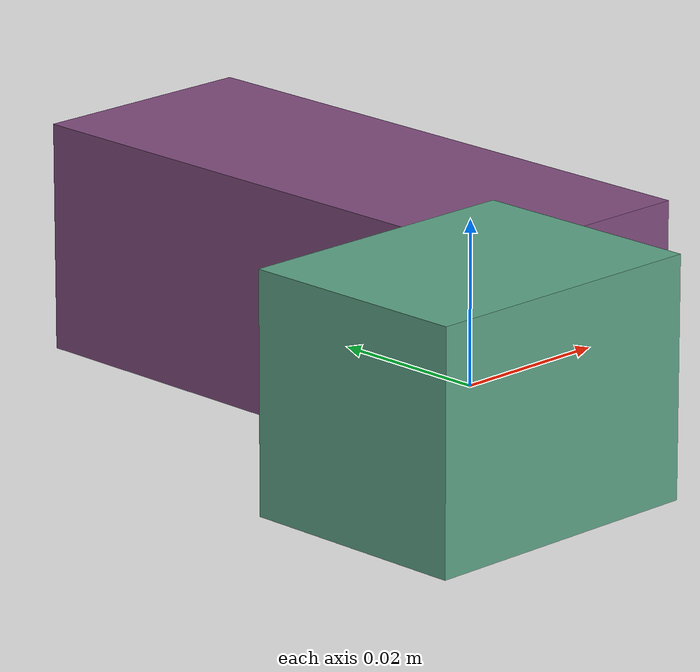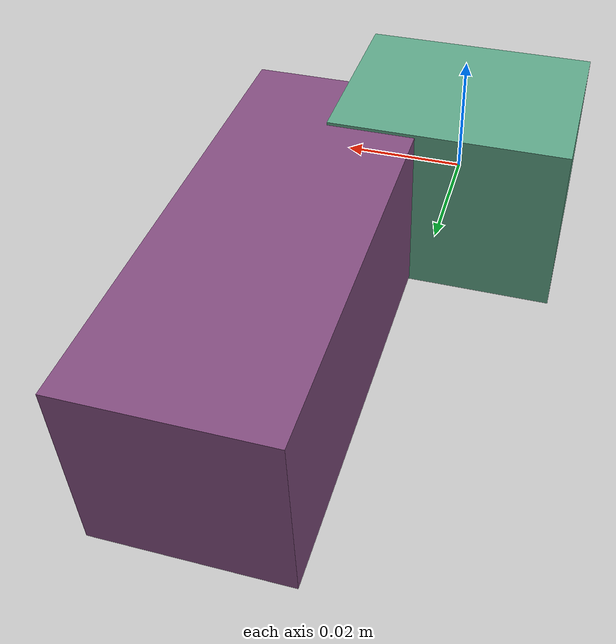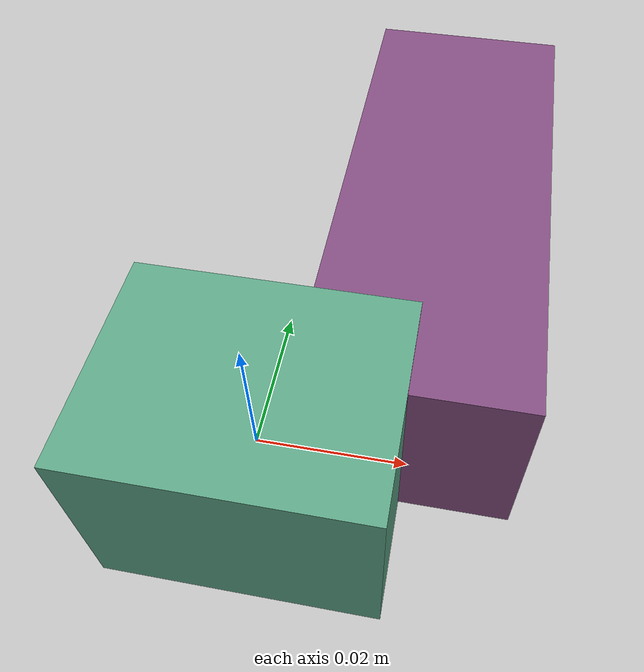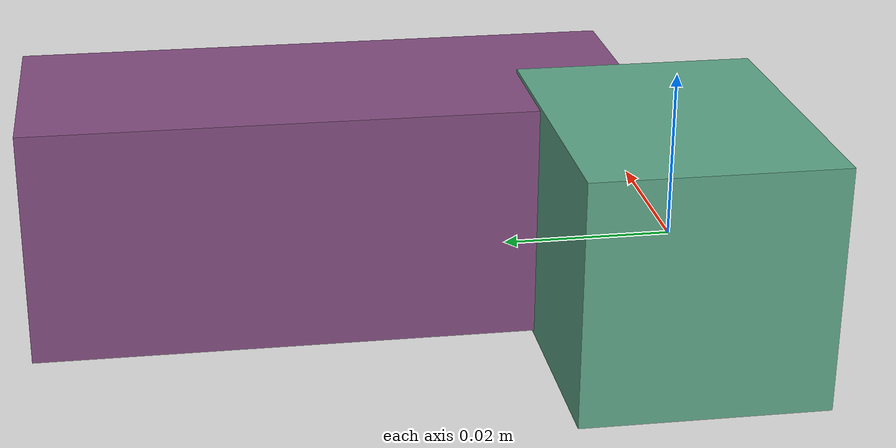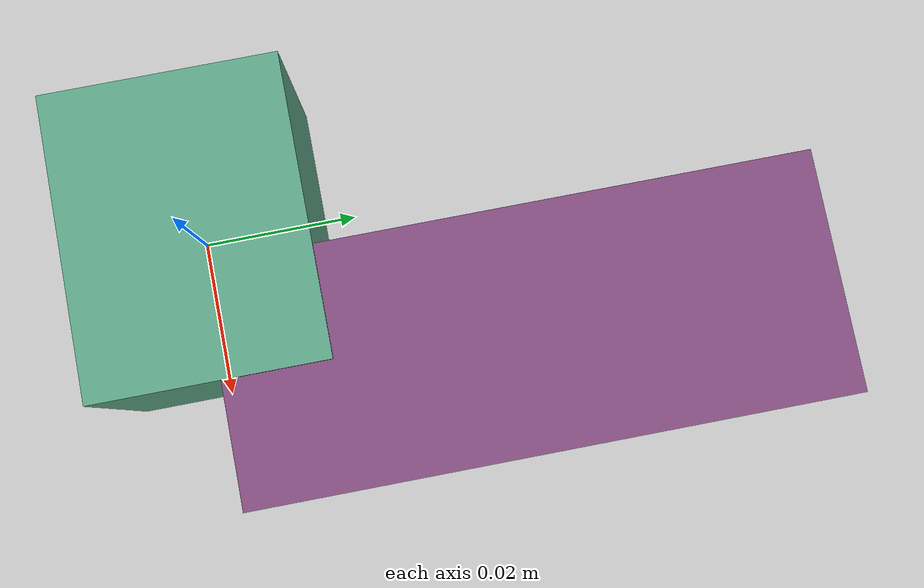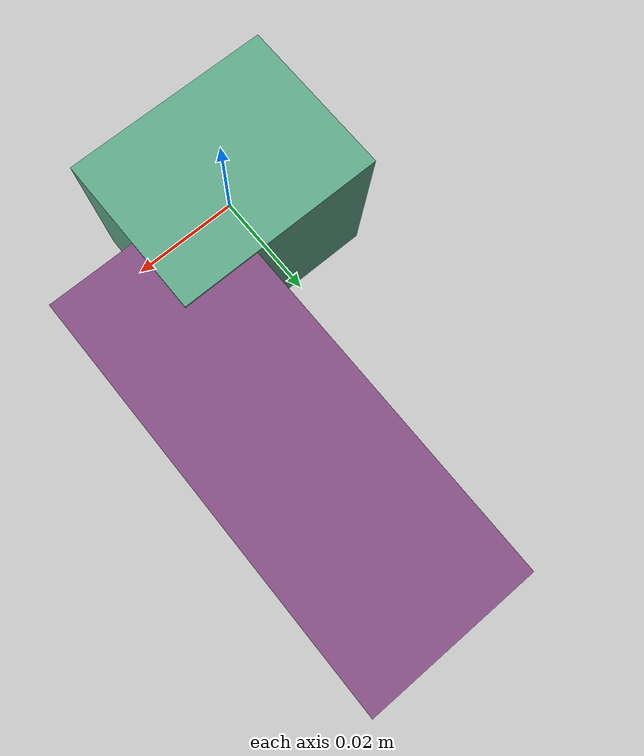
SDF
<sdf version="1.4"><world name="default"><model name="object0"><link name="link1"><pose>0 0 0 0 0 0</pose><inertial><pose>0 0 0 0 0 0</pose><mass>0.020753548465481535</mass><inertia><ixx>3.11303226982223e-06</ixx><ixy>0</ixy><iyy>4.11103035741309e-06</iyy><ixz>0</ixz><iyz>0</iyz><izz>4.11103035741309e-06</izz></inertia></inertial><visual name="link1_visual"><pose>0 0  0 0 0 0</pose><geometry><box><size>0.03843249715829914 0.03 0.03</size></box></geometry><material><diffuse>0.3668417292623808 0.650224296325606 0.532295269195795 1</diffuse></material></visual><collision><pose>0 0  0 0 0 0</pose><geometry><box><size>0.03843249715829914 0.03 0.03</size></box></geometry></collision></link><link name="link2"><pose>0.020025396777890878 0.03901607665849556 0 0 0 0</pose><inertial><pose>0 0 0 0 0 0</pose><mass>0.04061469735153996</mass><inertia><ixx>2.199253874212114e-05</ixx><ixy>0</ixy><iyy>5.892515674085922e-06</iyy><ixz>0</ixz><iyz>0</iyz><izz>2.2192227670766212e-05</izz></inertia></inertial><visual name="link2_visual"><pose>0 0  0 0 0 0</pose><geometry><box><size>0.03 0.07521240250285179 0.028999999999999998</size></box></geometry><material><diffuse>0.5100136258604748 0.30144455449414004 0.4992177784811018 1</diffuse></material></visual><collision><pose>0 0  0 0 0 0</pose><geometry><box><size>0.03 0.07521240250285179 0.028999999999999998</size></box></geometry></collision></link><joint name="link_joint_0" type="fixed"><parent>link1</parent><child>link2</child><pose>0 0 0 0 0 0</pose><axis><xyz>0 0 1</xyz></axis></joint></model></world></sdf>
